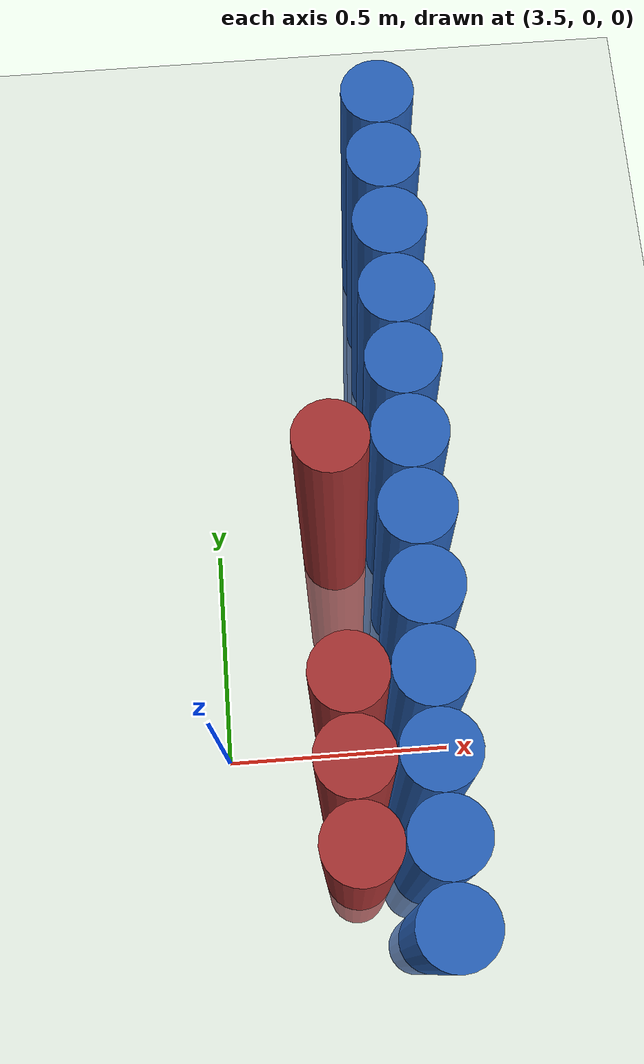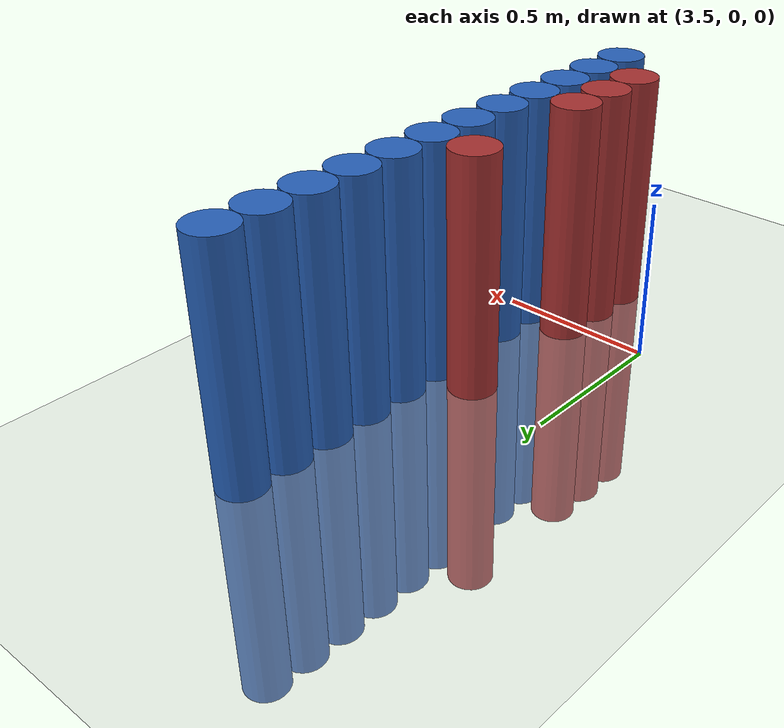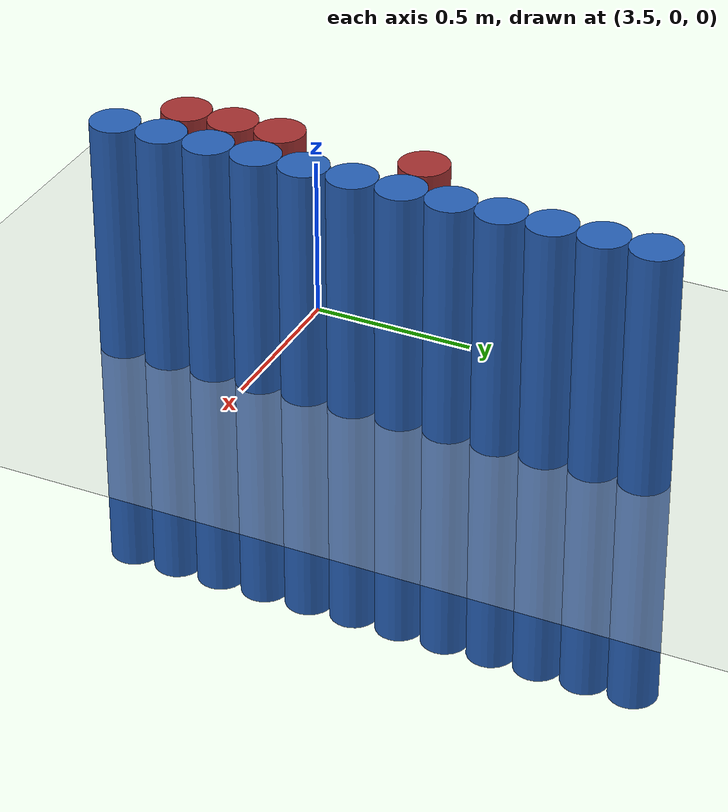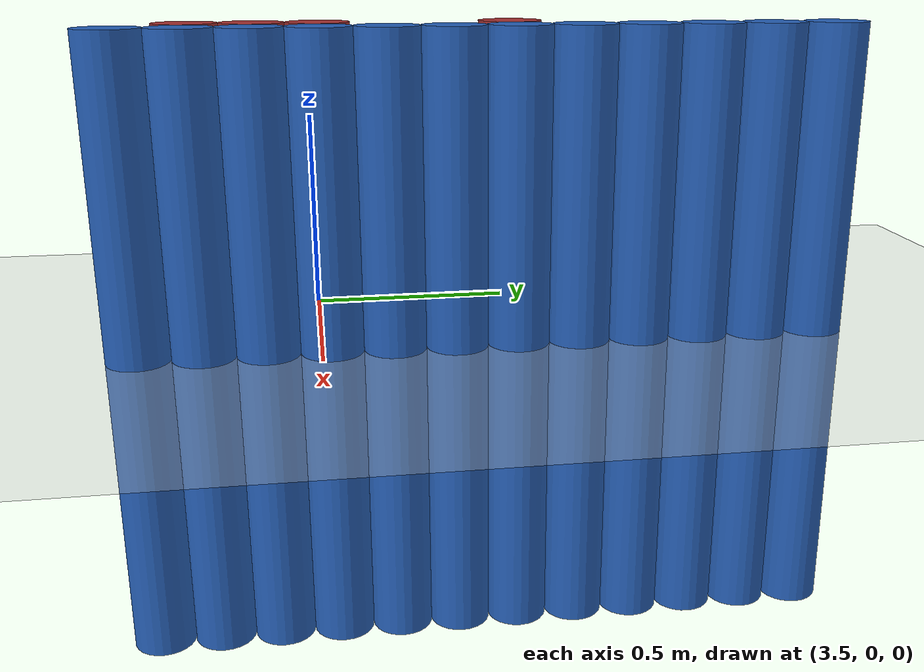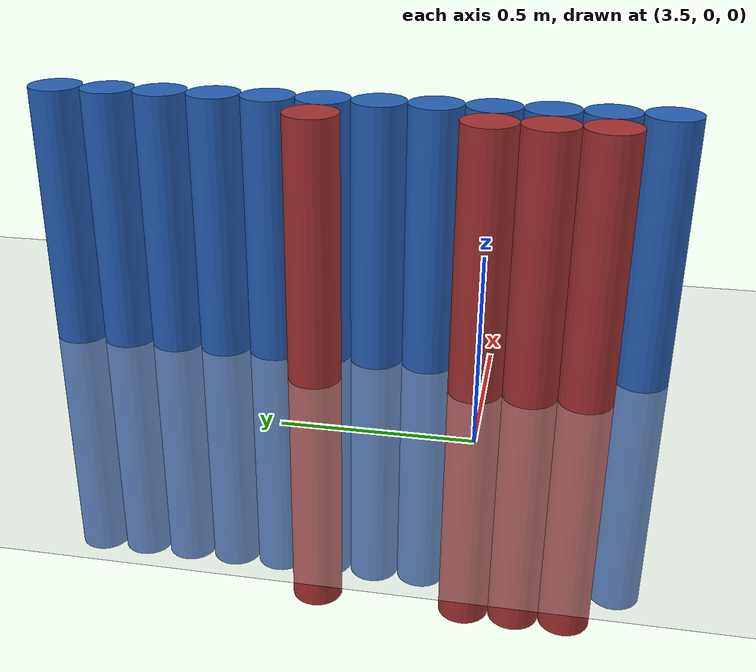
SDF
<sdf version="1.6">
 <world name="default">
  <model name="ground_plane">
   <static>1</static>
   <link name="link">
    <collision name="collision">
     <geometry><plane><normal>0 0 1</normal><size>100 100</size></plane></geometry>
     <surface><friction><ode><mu>100</mu><mu2>50</mu2></ode></friction></surface>
    </collision>
    <visual name="visual">
     <cast_shadows>0</cast_shadows>
     <geometry><plane><normal>0 0 1</normal><size>100 100</size></plane></geometry>
     <material>
      <script><uri>file://media/materials/scripts/gazebo.material</uri><name>Gazebo/Grey</name></script>
     </material>
    </visual>
   </link>
  </model>
  <model name="unit_cylinder_110">
   <static>1</static>
   <pose>3.925000 -0.275000 0.000000 0.000000 0.000000 0.000000</pose>
   <link name="link">
    <inertial>
     <mass>1</mass>
     <inertia><ixx>0.145833</ixx><ixy>0</ixy><ixz>0</ixz><iyy>0.145833</iyy><iyz>0</iyz><izz>0.125</izz></inertia>
    </inertial>
    <collision name="collision">
     <geometry><cylinder><radius>0.075000</radius><length>1.5</length></cylinder></geometry>
    </collision>
    <visual name="visual">
     <geometry><cylinder><radius>0.075000</radius><length>1.5</length></cylinder></geometry>
     <material>
      <ambient>0.152000 0.379000 0.720000 1</ambient>
      <diffuse>0.152000 0.379000 0.720000 1</diffuse>
     </material>
     <material>
      <script><name>Gazebo/Grey</name><uri>file://media/materials/scripts/gazebo.material</uri></script>
     </material>
    </visual>
   </link>
  </model>
  <model name="unit_cylinder_112">
   <static>1</static>
   <pose>3.925000 -0.125000 0.000000 0.000000 0.000000 0.000000</pose>
   <link name="link">
    <inertial>
     <mass>1</mass>
     <inertia><ixx>0.145833</ixx><ixy>0</ixy><ixz>0</ixz><iyy>0.145833</iyy><iyz>0</iyz><izz>0.125</izz></inertia>
    </inertial>
    <collision name="collision">
     <geometry><cylinder><radius>0.075000</radius><length>1.5</length></cylinder></geometry>
    </collision>
    <visual name="visual">
     <geometry><cylinder><radius>0.075000</radius><length>1.5</length></cylinder></geometry>
     <material>
      <ambient>0.152000 0.379000 0.720000 1</ambient>
      <diffuse>0.152000 0.379000 0.720000 1</diffuse>
     </material>
     <material>
      <script><name>Gazebo/Grey</name><uri>file://media/materials/scripts/gazebo.material</uri></script>
     </material>
    </visual>
   </link>
  </model>
  <model name="unit_cylinder_114">
   <static>1</static>
   <pose>3.925000 0.025000 0.000000 0.000000 0.000000 0.000000</pose>
   <link name="link">
    <inertial>
     <mass>1</mass>
     <inertia><ixx>0.145833</ixx><ixy>0</ixy><ixz>0</ixz><iyy>0.145833</iyy><iyz>0</iyz><izz>0.125</izz></inertia>
    </inertial>
    <collision name="collision">
     <geometry><cylinder><radius>0.075000</radius><length>1.5</length></cylinder></geometry>
    </collision>
    <visual name="visual">
     <geometry><cylinder><radius>0.075000</radius><length>1.5</length></cylinder></geometry>
     <material>
      <ambient>0.152000 0.379000 0.720000 1</ambient>
      <diffuse>0.152000 0.379000 0.720000 1</diffuse>
     </material>
     <material>
      <script><name>Gazebo/Grey</name><uri>file://media/materials/scripts/gazebo.material</uri></script>
     </material>
    </visual>
   </link>
  </model>
  <model name="unit_cylinder_116">
   <static>1</static>
   <pose>3.925000 0.175000 0.000000 0.000000 0.000000 0.000000</pose>
   <link name="link">
    <inertial>
     <mass>1</mass>
     <inertia><ixx>0.145833</ixx><ixy>0</ixy><ixz>0</ixz><iyy>0.145833</iyy><iyz>0</iyz><izz>0.125</izz></inertia>
    </inertial>
    <collision name="collision">
     <geometry><cylinder><radius>0.075000</radius><length>1.5</length></cylinder></geometry>
    </collision>
    <visual name="visual">
     <geometry><cylinder><radius>0.075000</radius><length>1.5</length></cylinder></geometry>
     <material>
      <ambient>0.152000 0.379000 0.720000 1</ambient>
      <diffuse>0.152000 0.379000 0.720000 1</diffuse>
     </material>
     <material>
      <script><name>Gazebo/Grey</name><uri>file://media/materials/scripts/gazebo.material</uri></script>
     </material>
    </visual>
   </link>
  </model>
  <model name="unit_cylinder_118">
   <static>1</static>
   <pose>3.925000 0.325000 0.000000 0.000000 0.000000 0.000000</pose>
   <link name="link">
    <inertial>
     <mass>1</mass>
     <inertia><ixx>0.145833</ixx><ixy>0</ixy><ixz>0</ixz><iyy>0.145833</iyy><iyz>0</iyz><izz>0.125</izz></inertia>
    </inertial>
    <collision name="collision">
     <geometry><cylinder><radius>0.075000</radius><length>1.5</length></cylinder></geometry>
    </collision>
    <visual name="visual">
     <geometry><cylinder><radius>0.075000</radius><length>1.5</length></cylinder></geometry>
     <material>
      <ambient>0.152000 0.379000 0.720000 1</ambient>
      <diffuse>0.152000 0.379000 0.720000 1</diffuse>
     </material>
     <material>
      <script><name>Gazebo/Grey</name><uri>file://media/materials/scripts/gazebo.material</uri></script>
     </material>
    </visual>
   </link>
  </model>
  <model name="unit_cylinder_120">
   <static>1</static>
   <pose>3.925000 0.475000 0.000000 0.000000 0.000000 0.000000</pose>
   <link name="link">
    <inertial>
     <mass>1</mass>
     <inertia><ixx>0.145833</ixx><ixy>0</ixy><ixz>0</ixz><iyy>0.145833</iyy><iyz>0</iyz><izz>0.125</izz></inertia>
    </inertial>
    <collision name="collision">
     <geometry><cylinder><radius>0.075000</radius><length>1.5</length></cylinder></geometry>
    </collision>
    <visual name="visual">
     <geometry><cylinder><radius>0.075000</radius><length>1.5</length></cylinder></geometry>
     <material>
      <ambient>0.152000 0.379000 0.720000 1</ambient>
      <diffuse>0.152000 0.379000 0.720000 1</diffuse>
     </material>
     <material>
      <script><name>Gazebo/Grey</name><uri>file://media/materials/scripts/gazebo.material</uri></script>
     </material>
    </visual>
   </link>
  </model>
  <model name="unit_cylinder_122">
   <static>1</static>
   <pose>3.925000 0.625000 0.000000 0.000000 0.000000 0.000000</pose>
   <link name="link">
    <inertial>
     <mass>1</mass>
     <inertia><ixx>0.145833</ixx><ixy>0</ixy><ixz>0</ixz><iyy>0.145833</iyy><iyz>0</iyz><izz>0.125</izz></inertia>
    </inertial>
    <collision name="collision">
     <geometry><cylinder><radius>0.075000</radius><length>1.5</length></cylinder></geometry>
    </collision>
    <visual name="visual">
     <geometry><cylinder><radius>0.075000</radius><length>1.5</length></cylinder></geometry>
     <material>
      <ambient>0.152000 0.379000 0.720000 1</ambient>
      <diffuse>0.152000 0.379000 0.720000 1</diffuse>
     </material>
     <material>
      <script><name>Gazebo/Grey</name><uri>file://media/materials/scripts/gazebo.material</uri></script>
     </material>
    </visual>
   </link>
  </model>
  <model name="unit_cylinder_124">
   <static>1</static>
   <pose>3.925000 0.775000 0.000000 0.000000 0.000000 0.000000</pose>
   <link name="link">
    <inertial>
     <mass>1</mass>
     <inertia><ixx>0.145833</ixx><ixy>0</ixy><ixz>0</ixz><iyy>0.145833</iyy><iyz>0</iyz><izz>0.125</izz></inertia>
    </inertial>
    <collision name="collision">
     <geometry><cylinder><radius>0.075000</radius><length>1.5</length></cylinder></geometry>
    </collision>
    <visual name="visual">
     <geometry><cylinder><radius>0.075000</radius><length>1.5</length></cylinder></geometry>
     <material>
      <ambient>0.152000 0.379000 0.720000 1</ambient>
      <diffuse>0.152000 0.379000 0.720000 1</diffuse>
     </material>
     <material>
      <script><name>Gazebo/Grey</name><uri>file://media/materials/scripts/gazebo.material</uri></script>
     </material>
    </visual>
   </link>
  </model>
  <model name="unit_cylinder_126">
   <static>1</static>
   <pose>3.925000 0.925000 0.000000 0.000000 0.000000 0.000000</pose>
   <link name="link">
    <inertial>
     <mass>1</mass>
     <inertia><ixx>0.145833</ixx><ixy>0</ixy><ixz>0</ixz><iyy>0.145833</iyy><iyz>0</iyz><izz>0.125</izz></inertia>
    </inertial>
    <collision name="collision">
     <geometry><cylinder><radius>0.075000</radius><length>1.5</length></cylinder></geometry>
    </collision>
    <visual name="visual">
     <geometry><cylinder><radius>0.075000</radius><length>1.5</length></cylinder></geometry>
     <material>
      <ambient>0.152000 0.379000 0.720000 1</ambient>
      <diffuse>0.152000 0.379000 0.720000 1</diffuse>
     </material>
     <material>
      <script><name>Gazebo/Grey</name><uri>file://media/materials/scripts/gazebo.material</uri></script>
     </material>
    </visual>
   </link>
  </model>
  <model name="unit_cylinder_128">
   <static>1</static>
   <pose>3.925000 1.075000 0.000000 0.000000 0.000000 0.000000</pose>
   <link name="link">
    <inertial>
     <mass>1</mass>
     <inertia><ixx>0.145833</ixx><ixy>0</ixy><ixz>0</ixz><iyy>0.145833</iyy><iyz>0</iyz><izz>0.125</izz></inertia>
    </inertial>
    <collision name="collision">
     <geometry><cylinder><radius>0.075000</radius><length>1.5</length></cylinder></geometry>
    </collision>
    <visual name="visual">
     <geometry><cylinder><radius>0.075000</radius><length>1.5</length></cylinder></geometry>
     <material>
      <ambient>0.152000 0.379000 0.720000 1</ambient>
      <diffuse>0.152000 0.379000 0.720000 1</diffuse>
     </material>
     <material>
      <script><name>Gazebo/Grey</name><uri>file://media/materials/scripts/gazebo.material</uri></script>
     </material>
    </visual>
   </link>
  </model>
  <model name="unit_cylinder_130">
   <static>1</static>
   <pose>3.925000 1.225000 0.000000 0.000000 0.000000 0.000000</pose>
   <link name="link">
    <inertial>
     <mass>1</mass>
     <inertia><ixx>0.145833</ixx><ixy>0</ixy><ixz>0</ixz><iyy>0.145833</iyy><iyz>0</iyz><izz>0.125</izz></inertia>
    </inertial>
    <collision name="collision">
     <geometry><cylinder><radius>0.075000</radius><length>1.5</length></cylinder></geometry>
    </collision>
    <visual name="visual">
     <geometry><cylinder><radius>0.075000</radius><length>1.5</length></cylinder></geometry>
     <material>
      <ambient>0.152000 0.379000 0.720000 1</ambient>
      <diffuse>0.152000 0.379000 0.720000 1</diffuse>
     </material>
     <material>
      <script><name>Gazebo/Grey</name><uri>file://media/materials/scripts/gazebo.material</uri></script>
     </material>
    </visual>
   </link>
  </model>
  <model name="unit_cylinder_455">
   <static>1</static>
   <pose>3.775000 -0.275000 0.000000 0.000000 0.000000 0.000000</pose>
   <link name="link">
    <inertial>
     <mass>1</mass>
     <inertia><ixx>0.145833</ixx><ixy>0</ixy><ixz>0</ixz><iyy>0.145833</iyy><iyz>0</iyz><izz>0.125</izz></inertia>
    </inertial>
    <collision name="collision">
     <geometry><cylinder><radius>0.075000</radius><length>1.5</length></cylinder></geometry>
    </collision>
    <visual name="visual">
     <geometry><cylinder><radius>0.075000</radius><length>1.5</length></cylinder></geometry>
     <material>
      <ambient>0.648000 0.192000 0.192000 1</ambient>
      <diffuse>0.648000 0.192000 0.192000 1</diffuse>
     </material>
     <material>
      <script><name>Gazebo/Grey</name><uri>file://media/materials/scripts/gazebo.material</uri></script>
     </material>
    </visual>
   </link>
  </model>
  <model name="unit_cylinder_456">
   <static>1</static>
   <pose>3.775000 -0.125000 0.000000 0.000000 0.000000 0.000000</pose>
   <link name="link">
    <inertial>
     <mass>1</mass>
     <inertia><ixx>0.145833</ixx><ixy>0</ixy><ixz>0</ixz><iyy>0.145833</iyy><iyz>0</iyz><izz>0.125</izz></inertia>
    </inertial>
    <collision name="collision">
     <geometry><cylinder><radius>0.075000</radius><length>1.5</length></cylinder></geometry>
    </collision>
    <visual name="visual">
     <geometry><cylinder><radius>0.075000</radius><length>1.5</length></cylinder></geometry>
     <material>
      <ambient>0.648000 0.192000 0.192000 1</ambient>
      <diffuse>0.648000 0.192000 0.192000 1</diffuse>
     </material>
     <material>
      <script><name>Gazebo/Grey</name><uri>file://media/materials/scripts/gazebo.material</uri></script>
     </material>
    </visual>
   </link>
  </model>
  <model name="unit_cylinder_457">
   <static>1</static>
   <pose>3.775000 0.025000 0.000000 0.000000 0.000000 0.000000</pose>
   <link name="link">
    <inertial>
     <mass>1</mass>
     <inertia><ixx>0.145833</ixx><ixy>0</ixy><ixz>0</ixz><iyy>0.145833</iyy><iyz>0</iyz><izz>0.125</izz></inertia>
    </inertial>
    <collision name="collision">
     <geometry><cylinder><radius>0.075000</radius><length>1.5</length></cylinder></geometry>
    </collision>
    <visual name="visual">
     <geometry><cylinder><radius>0.075000</radius><length>1.5</length></cylinder></geometry>
     <material>
      <ambient>0.648000 0.192000 0.192000 1</ambient>
      <diffuse>0.648000 0.192000 0.192000 1</diffuse>
     </material>
     <material>
      <script><name>Gazebo/Grey</name><uri>file://media/materials/scripts/gazebo.material</uri></script>
     </material>
    </visual>
   </link>
  </model>
  <model name="unit_cylinder_458">
   <static>1</static>
   <pose>3.775000 0.475000 0.000000 0.000000 0.000000 0.000000</pose>
   <link name="link">
    <inertial>
     <mass>1</mass>
     <inertia><ixx>0.145833</ixx><ixy>0</ixy><ixz>0</ixz><iyy>0.145833</iyy><iyz>0</iyz><izz>0.125</izz></inertia>
    </inertial>
    <collision name="collision">
     <geometry><cylinder><radius>0.075000</radius><length>1.5</length></cylinder></geometry>
    </collision>
    <visual name="visual">
     <geometry><cylinder><radius>0.075000</radius><length>1.5</length></cylinder></geometry>
     <material>
      <ambient>0.648000 0.192000 0.192000 1</ambient>
      <diffuse>0.648000 0.192000 0.192000 1</diffuse>
     </material>
     <material>
      <script><name>Gazebo/Grey</name><uri>file://media/materials/scripts/gazebo.material</uri></script>
     </material>
    </visual>
   </link>
  </model>
  <model name="unit_cylinder_481">
   <static>1</static>
   <pose>3.925000 -0.425000 0.000000 0.000000 0.000000 0.000000</pose>
   <link name="link">
    <inertial>
     <mass>1</mass>
     <inertia><ixx>0.145833</ixx><ixy>0</ixy><ixz>0</ixz><iyy>0.145833</iyy><iyz>0</iyz><izz>0.125</izz></inertia>
    </inertial>
    <collision name="collision">
     <geometry><cylinder><radius>0.075000</radius><length>1.5</length></cylinder></geometry>
    </collision>
    <visual name="visual">
     <geometry><cylinder><radius>0.075000</radius><length>1.5</length></cylinder></geometry>
     <material>
      <ambient>0.152000 0.379000 0.720000 1</ambient>
      <diffuse>0.152000 0.379000 0.720000 1</diffuse>
     </material>
     <material>
      <script><name>Gazebo/Grey</name><uri>file://media/materials/scripts/gazebo.material</uri></script>
     </material>
    </visual>
   </link>
  </model>
  <model name="unit_cylinder_482">
   <static>1</static>
   <pose>3.925000 -0.275000 0.000000 0.000000 0.000000 0.000000</pose>
   <link name="link">
    <inertial>
     <mass>1</mass>
     <inertia><ixx>0.145833</ixx><ixy>0</ixy><ixz>0</ixz><iyy>0.145833</iyy><iyz>0</iyz><izz>0.125</izz></inertia>
    </inertial>
    <collision name="collision">
     <geometry><cylinder><radius>0.075000</radius><length>1.5</length></cylinder></geometry>
    </collision>
    <visual name="visual">
     <geometry><cylinder><radius>0.075000</radius><length>1.5</length></cylinder></geometry>
     <material>
      <ambient>0.152000 0.379000 0.720000 1</ambient>
      <diffuse>0.152000 0.379000 0.720000 1</diffuse>
     </material>
     <material>
      <script><name>Gazebo/Grey</name><uri>file://media/materials/scripts/gazebo.material</uri></script>
     </material>
    </visual>
   </link>
  </model>
  <model name="unit_cylinder_483">
   <static>1</static>
   <pose>3.925000 -0.125000 0.000000 0.000000 0.000000 0.000000</pose>
   <link name="link">
    <inertial>
     <mass>1</mass>
     <inertia><ixx>0.145833</ixx><ixy>0</ixy><ixz>0</ixz><iyy>0.145833</iyy><iyz>0</iyz><izz>0.125</izz></inertia>
    </inertial>
    <collision name="collision">
     <geometry><cylinder><radius>0.075000</radius><length>1.5</length></cylinder></geometry>
    </collision>
    <visual name="visual">
     <geometry><cylinder><radius>0.075000</radius><length>1.5</length></cylinder></geometry>
     <material>
      <ambient>0.152000 0.379000 0.720000 1</ambient>
      <diffuse>0.152000 0.379000 0.720000 1</diffuse>
     </material>
     <material>
      <script><name>Gazebo/Grey</name><uri>file://media/materials/scripts/gazebo.material</uri></script>
     </material>
    </visual>
   </link>
  </model>
  <model name="unit_cylinder_484">
   <static>1</static>
   <pose>3.925000 0.025000 0.000000 0.000000 0.000000 0.000000</pose>
   <link name="link">
    <inertial>
     <mass>1</mass>
     <inertia><ixx>0.145833</ixx><ixy>0</ixy><ixz>0</ixz><iyy>0.145833</iyy><iyz>0</iyz><izz>0.125</izz></inertia>
    </inertial>
    <collision name="collision">
     <geometry><cylinder><radius>0.075000</radius><length>1.5</length></cylinder></geometry>
    </collision>
    <visual name="visual">
     <geometry><cylinder><radius>0.075000</radius><length>1.5</length></cylinder></geometry>
     <material>
      <ambient>0.152000 0.379000 0.720000 1</ambient>
      <diffuse>0.152000 0.379000 0.720000 1</diffuse>
     </material>
     <material>
      <script><name>Gazebo/Grey</name><uri>file://media/materials/scripts/gazebo.material</uri></script>
     </material>
    </visual>
   </link>
  </model>
  <model name="unit_cylinder_485">
   <static>1</static>
   <pose>3.925000 0.175000 0.000000 0.000000 0.000000 0.000000</pose>
   <link name="link">
    <inertial>
     <mass>1</mass>
     <inertia><ixx>0.145833</ixx><ixy>0</ixy><ixz>0</ixz><iyy>0.145833</iyy><iyz>0</iyz><izz>0.125</izz></inertia>
    </inertial>
    <collision name="collision">
     <geometry><cylinder><radius>0.075000</radius><length>1.5</length></cylinder></geometry>
    </collision>
    <visual name="visual">
     <geometry><cylinder><radius>0.075000</radius><length>1.5</length></cylinder></geometry>
     <material>
      <ambient>0.152000 0.379000 0.720000 1</ambient>
      <diffuse>0.152000 0.379000 0.720000 1</diffuse>
     </material>
     <material>
      <script><name>Gazebo/Grey</name><uri>file://media/materials/scripts/gazebo.material</uri></script>
     </material>
    </visual>
   </link>
  </model>
  <model name="unit_cylinder_486">
   <static>1</static>
   <pose>3.925000 0.325000 0.000000 0.000000 0.000000 0.000000</pose>
   <link name="link">
    <inertial>
     <mass>1</mass>
     <inertia><ixx>0.145833</ixx><ixy>0</ixy><ixz>0</ixz><iyy>0.145833</iyy><iyz>0</iyz><izz>0.125</izz></inertia>
    </inertial>
    <collision name="collision">
     <geometry><cylinder><radius>0.075000</radius><length>1.5</length></cylinder></geometry>
    </collision>
    <visual name="visual">
     <geometry><cylinder><radius>0.075000</radius><length>1.5</length></cylinder></geometry>
     <material>
      <ambient>0.152000 0.379000 0.720000 1</ambient>
      <diffuse>0.152000 0.379000 0.720000 1</diffuse>
     </material>
     <material>
      <script><name>Gazebo/Grey</name><uri>file://media/materials/scripts/gazebo.material</uri></script>
     </material>
    </visual>
   </link>
  </model>
  <model name="unit_cylinder_487">
   <static>1</static>
   <pose>3.925000 0.475000 0.000000 0.000000 0.000000 0.000000</pose>
   <link name="link">
    <inertial>
     <mass>1</mass>
     <inertia><ixx>0.145833</ixx><ixy>0</ixy><ixz>0</ixz><iyy>0.145833</iyy><iyz>0</iyz><izz>0.125</izz></inertia>
    </inertial>
    <collision name="collision">
     <geometry><cylinder><radius>0.075000</radius><length>1.5</length></cylinder></geometry>
    </collision>
    <visual name="visual">
     <geometry><cylinder><radius>0.075000</radius><length>1.5</length></cylinder></geometry>
     <material>
      <ambient>0.152000 0.379000 0.720000 1</ambient>
      <diffuse>0.152000 0.379000 0.720000 1</diffuse>
     </material>
     <material>
      <script><name>Gazebo/Grey</name><uri>file://media/materials/scripts/gazebo.material</uri></script>
     </material>
    </visual>
   </link>
  </model>
  <model name="unit_cylinder_488">
   <static>1</static>
   <pose>3.925000 0.625000 0.000000 0.000000 0.000000 0.000000</pose>
   <link name="link">
    <inertial>
     <mass>1</mass>
     <inertia><ixx>0.145833</ixx><ixy>0</ixy><ixz>0</ixz><iyy>0.145833</iyy><iyz>0</iyz><izz>0.125</izz></inertia>
    </inertial>
    <collision name="collision">
     <geometry><cylinder><radius>0.075000</radius><length>1.5</length></cylinder></geometry>
    </collision>
    <visual name="visual">
     <geometry><cylinder><radius>0.075000</radius><length>1.5</length></cylinder></geometry>
     <material>
      <ambient>0.152000 0.379000 0.720000 1</ambient>
      <diffuse>0.152000 0.379000 0.720000 1</diffuse>
     </material>
     <material>
      <script><name>Gazebo/Grey</name><uri>file://media/materials/scripts/gazebo.material</uri></script>
     </material>
    </visual>
   </link>
  </model>
  <model name="unit_cylinder_489">
   <static>1</static>
   <pose>3.925000 0.775000 0.000000 0.000000 0.000000 0.000000</pose>
   <link name="link">
    <inertial>
     <mass>1</mass>
     <inertia><ixx>0.145833</ixx><ixy>0</ixy><ixz>0</ixz><iyy>0.145833</iyy><iyz>0</iyz><izz>0.125</izz></inertia>
    </inertial>
    <collision name="collision">
     <geometry><cylinder><radius>0.075000</radius><length>1.5</length></cylinder></geometry>
    </collision>
    <visual name="visual">
     <geometry><cylinder><radius>0.075000</radius><length>1.5</length></cylinder></geometry>
     <material>
      <ambient>0.152000 0.379000 0.720000 1</ambient>
      <diffuse>0.152000 0.379000 0.720000 1</diffuse>
     </material>
     <material>
      <script><name>Gazebo/Grey</name><uri>file://media/materials/scripts/gazebo.material</uri></script>
     </material>
    </visual>
   </link>
  </model>
  <model name="unit_cylinder_490">
   <static>1</static>
   <pose>3.925000 0.925000 0.000000 0.000000 0.000000 0.000000</pose>
   <link name="link">
    <inertial>
     <mass>1</mass>
     <inertia><ixx>0.145833</ixx><ixy>0</ixy><ixz>0</ixz><iyy>0.145833</iyy><iyz>0</iyz><izz>0.125</izz></inertia>
    </inertial>
    <collision name="collision">
     <geometry><cylinder><radius>0.075000</radius><length>1.5</length></cylinder></geometry>
    </collision>
    <visual name="visual">
     <geometry><cylinder><radius>0.075000</radius><length>1.5</length></cylinder></geometry>
     <material>
      <ambient>0.152000 0.379000 0.720000 1</ambient>
      <diffuse>0.152000 0.379000 0.720000 1</diffuse>
     </material>
     <material>
      <script><name>Gazebo/Grey</name><uri>file://media/materials/scripts/gazebo.material</uri></script>
     </material>
    </visual>
   </link>
  </model>
  <model name="unit_cylinder_491">
   <static>1</static>
   <pose>3.925000 1.075000 0.000000 0.000000 0.000000 0.000000</pose>
   <link name="link">
    <inertial>
     <mass>1</mass>
     <inertia><ixx>0.145833</ixx><ixy>0</ixy><ixz>0</ixz><iyy>0.145833</iyy><iyz>0</iyz><izz>0.125</izz></inertia>
    </inertial>
    <collision name="collision">
     <geometry><cylinder><radius>0.075000</radius><length>1.5</length></cylinder></geometry>
    </collision>
    <visual name="visual">
     <geometry><cylinder><radius>0.075000</radius><length>1.5</length></cylinder></geometry>
     <material>
      <ambient>0.152000 0.379000 0.720000 1</ambient>
      <diffuse>0.152000 0.379000 0.720000 1</diffuse>
     </material>
     <material>
      <script><name>Gazebo/Grey</name><uri>file://media/materials/scripts/gazebo.material</uri></script>
     </material>
    </visual>
   </link>
  </model>
 </world>
</sdf>
